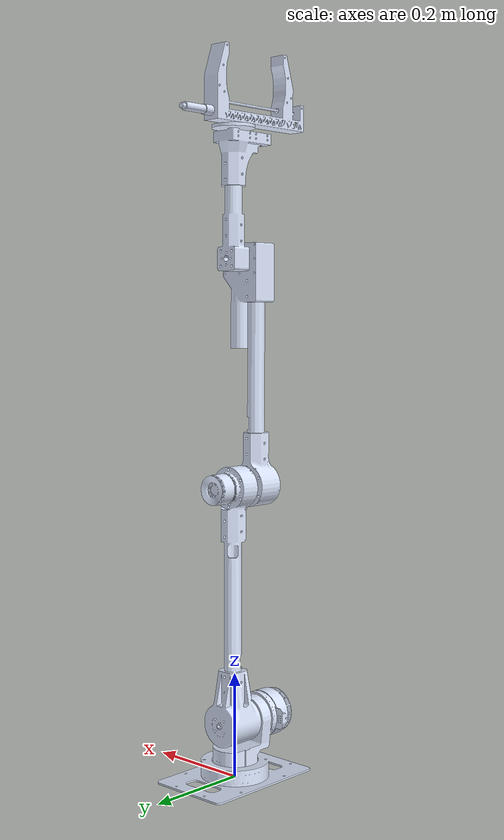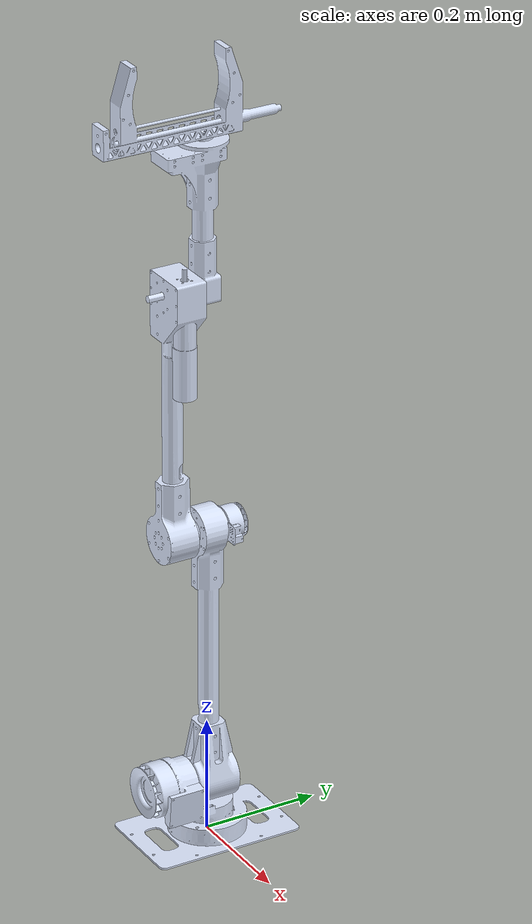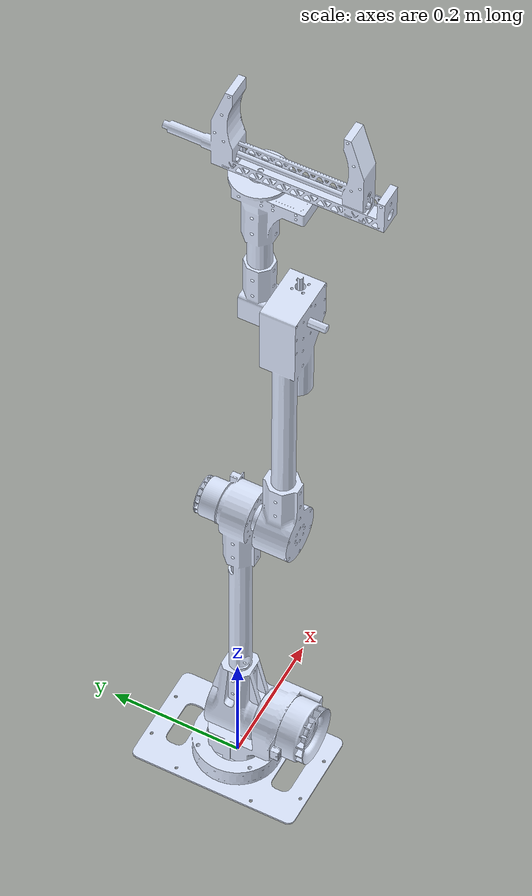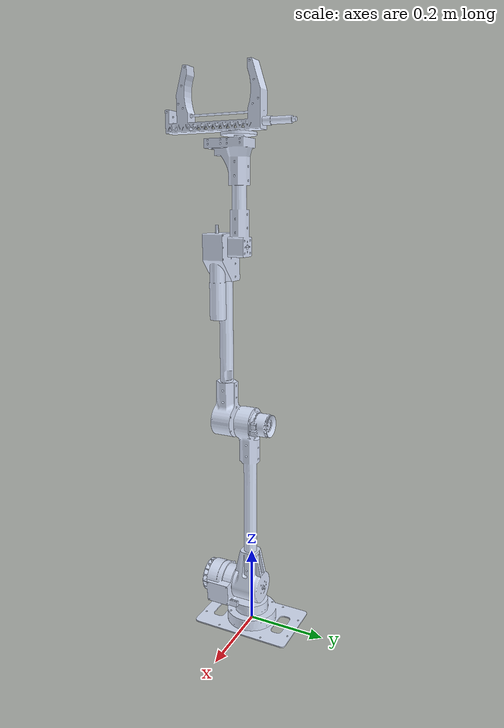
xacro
<?xml version="1.0"?>
<!-- GENERADO por scripts/generar_brazo_gz.py a partir de brazo.urdf. No editar a mano. -->
<robot xmlns:xacro="http://ros.org/wiki/xacro" name="brazo_2">
  <xacro:arg name="montadas" default="5"/>
  <xacro:arg name="escala_masa" default="1.0"/>
  <xacro:property name="montadas" value="$(arg montadas)"/>
  <xacro:property name="em" value="$(arg escala_masa)"/>
  <link name="base">
      <inertial>
        <origin xyz="1.39958423819865E-17 -4.11946375579782E-18 0.00933047710244957" rpy="0 0 0" />
        <mass value="0.594564150366253" />
        <inertia ixx="0.00220226641592648" ixy="3.38152256422411E-18" ixz="4.20144212304877E-18" iyy="0.00121595685384765" iyz="-4.68252440232623E-20" izz="0.00341204275167526" />
      </inertial>
      <visual>
        <origin xyz="0 0 0" rpy="0 0 0" />
        <geometry>
          <mesh filename="package://mi_rover_description/meshes/Brazo/base.STL" />
        </geometry>
        <material name="">
          <color rgba="0.866666666666667 0.909803921568627 1 1" />
        </material>
      </visual>
      <collision>
        <origin xyz="0 0 0" rpy="0 0 0" />
        <geometry>
          <mesh filename="package://mi_rover_description/meshes/Brazo/base.STL" />
        </geometry>
      </collision>
    </link>
  <xacro:if value="${montadas >= 1}">
  <link name="Link_1">
      <inertial>
        <origin xyz="0.00830108225016004 -0.0424137581999083 0.0474326767417051" rpy="0 0 0" />
        <mass value="${1.05857299570185 * em}" />
        <inertia ixx="${0.00117937368473566 * em}" ixy="${0.000121093366641107 * em}" ixz="${-5.0011054142264e-05 * em}" iyy="${0.00108030167307535 * em}" iyz="${0.000222958830256965 * em}" izz="${0.00122776170114691 * em}" />
      </inertial>
      <visual>
        <origin xyz="0 0 0" rpy="0 0 0" />
        <geometry>
          <mesh filename="package://mi_rover_description/meshes/Brazo/Link_1.STL" />
        </geometry>
        <material name="">
          <color rgba="0.866666666666667 0.909803921568627 1 1" />
        </material>
      </visual>
      <collision>
        <origin xyz="0 0 0" rpy="0 0 0" />
        <geometry>
          <mesh filename="package://mi_rover_description/meshes/Brazo/Link_1.STL" />
        </geometry>
      </collision>
    </link>
  </xacro:if>
  <xacro:if value="${montadas >= 1}">
  <joint name="Joint_1" type="continuous">
      <origin xyz="0 0 0.03" rpy="0 0 0" />
      <parent link="base" />
      <child link="Link_1" />
      <axis xyz="0 0 -1" />

      <limit effort="33.6" velocity="1.23" />
      <dynamics damping="1.0" friction="0.05" />
    </joint>
  </xacro:if>
  <xacro:if value="${montadas >= 2}">
  <link name="Link_2">
      <inertial>
        <origin xyz="0.000220391421112707 -0.254806409007157 -0.0333451288978256" rpy="0 0 0" />
        <mass value="${0.975920981532861 * em}" />
        <inertia ixx="${0.004422283964783726 * em}" ixy="${-1.56952710811249e-07 * em}" ixz="${6.90748814042608e-07 * em}" iyy="${0.000500378936927172 * em}" iyz="${-6.94997343328116e-05 * em}" izz="${0.00434360107285825 * em}" />
      </inertial>
      <visual>
        <origin xyz="0 0 0" rpy="0 0 0" />
        <geometry>
          <mesh filename="package://mi_rover_description/meshes/Brazo/Link_2.STL" />
        </geometry>
        <material name="">
          <color rgba="0.866666666666667 0.909803921568627 1 1" />
        </material>
      </visual>
      <collision>
        <origin xyz="0 0 0" rpy="0 0 0" />
        <geometry>
          <mesh filename="package://mi_rover_description/meshes/Brazo/Link_2.STL" />
        </geometry>
      </collision>
    </link>
  </xacro:if>
  <xacro:if value="${montadas >= 2}">
  <joint name="Joint_2" type="continuous">
      <origin xyz="0.00625 0.03585 0.0742" rpy="-1.5708 0 0" />
      <parent link="Link_1" />
      <child link="Link_2" />
      <axis xyz="0 0 1" />

      <limit effort="37.0" velocity="3.67" />
      <dynamics damping="1.5" friction="0.05" />
    </joint>
  </xacro:if>
  <xacro:if value="${montadas >= 3}">
  <link name="Link_3">
      <inertial>
        <origin xyz="0.00963941202063687 0.22529482981309 -0.0257004642867256" rpy="0 0 0" />
        <mass value="${1.38441974915215 * em}" />
        <inertia ixx="${0.00469817934353504 * em}" ixy="${-7.39032612536994e-05 * em}" ixz="${-6.1207409739754e-10 * em}" iyy="${0.000705603188859499 * em}" iyz="${9.4891068778738e-06 * em}" izz="${0.00493184594226307 * em}" />
      </inertial>
      <visual>
        <origin xyz="0 0 0" rpy="0 0 0" />
        <geometry>
          <mesh filename="package://mi_rover_description/meshes/Brazo/Link_3.STL" />
        </geometry>
        <material name="">
          <color rgba="0.866666666666667 0.909803921568627 1 1" />
        </material>
      </visual>
      <collision>
        <origin xyz="0 0 0" rpy="0 0 0" />
        <geometry>
          <mesh filename="package://mi_rover_description/meshes/Brazo/Link_3.STL" />
        </geometry>
      </collision>
    </link>
  </xacro:if>
  <xacro:if value="${montadas >= 3}">
  <joint name="Joint_3" type="revolute">
      <origin xyz="0 -0.45045 -0.12605" rpy="-3.1416 0 0" />
      <parent link="Link_2" />
      <child link="Link_3" />
      <axis xyz="0 0 -1" />

      <limit lower="-3.1416" upper="3.1416" effort="37.0" velocity="3.67" />
      <dynamics damping="1.0" friction="0.05" />
    </joint>
  </xacro:if>
  <xacro:if value="${montadas >= 4}">
  <link name="Link_4">
      <inertial>
        <origin xyz="1.76664695372697E-09 -0.138606750179293 -0.0118359865270931" rpy="0 0 0" />
        <mass value="${0.581802983405437 * em}" />
        <inertia ixx="${0.000825785251805779 * em}" ixy="${5.80528547944091e-12 * em}" ixz="${-5.18791287355876e-12 * em}" iyy="${0.000352010267825656 * em}" iyz="${-2.10784198231409e-05 * em}" izz="${0.000702088208596816 * em}" />
      </inertial>
      <visual>
        <origin xyz="0 0 0" rpy="0 0 0" />
        <geometry>
          <mesh filename="package://mi_rover_description/meshes/Brazo/Link_4.STL" />
        </geometry>
        <material name="">
          <color rgba="0.866666666666667 0.909803921568627 1 1" />
        </material>
      </visual>
      <collision>
        <origin xyz="0 0 0" rpy="0 0 0" />
        <geometry>
          <mesh filename="package://mi_rover_description/meshes/Brazo/Link_4.STL" />
        </geometry>
      </collision>
    </link>
  </xacro:if>
  <xacro:if value="${montadas >= 4}">
  <joint name="Joint_4" type="revolute">
      <origin xyz="0.016 0.4295 -0.0771" rpy="3.1416 0 0" />
      <parent link="Link_3" />
      <child link="Link_4" />
      <axis xyz="0 0 1" />

      <limit lower="-3.1416" upper="3.1416" effort="33.6" velocity="1.23" />
      <dynamics damping="1.0" friction="0.05" />
    </joint>
  </xacro:if>
  <xacro:if value="${montadas >= 5}">
  <link name="Link_5">
      <inertial>
        <origin xyz="7.2400814162682E-07 -0.0433430287718577 0.051471065456673" rpy="0 0 0" />
        <mass value="${0.406894631004107 * em}" />
        <inertia ixx="${0.00110776348915288 * em}" ixy="${7.11315522530653e-10 * em}" ixz="${2.12955056598781e-10 * em}" iyy="${0.000500975324315308 * em}" iyz="${-9.82929624587456e-05 * em}" izz="${0.000691088095582475 * em}" />
      </inertial>
      <visual>
        <origin xyz="0 0 0" rpy="0 0 0" />
        <geometry>
          <mesh filename="package://mi_rover_description/meshes/Brazo/Link_5.STL" />
        </geometry>
        <material name="">
          <color rgba="0.866666666666667 0.909803921568627 1 1" />
        </material>
      </visual>
      <collision>
        <origin xyz="0 0 0" rpy="0 0 0" />
        <geometry>
          <mesh filename="package://mi_rover_description/meshes/Brazo/Link_5.STL" />
        </geometry>
      </collision>
    </link>
  </xacro:if>
  <xacro:if value="${montadas >= 5}">
  <joint name="Joint_5" type="continuous">
      <origin xyz="0 -0.2475 -0.0057" rpy="1.5708 0 0" />
      <parent link="Link_4" />
      <child link="Link_5" />
      <axis xyz="0 0 1" />
      <limit effort="6.0" velocity="6.28" />
      <dynamics damping="0.5" friction="0.01" />
    </joint>
  </xacro:if>
</robot>
